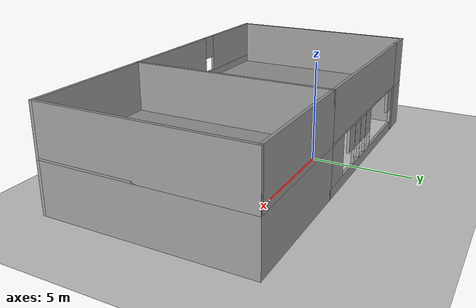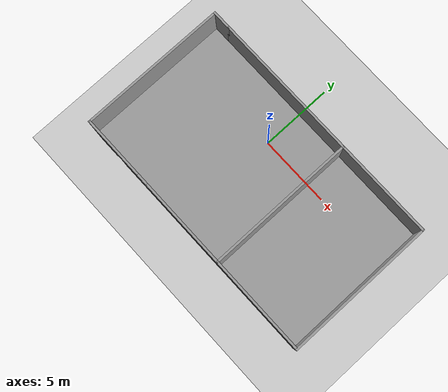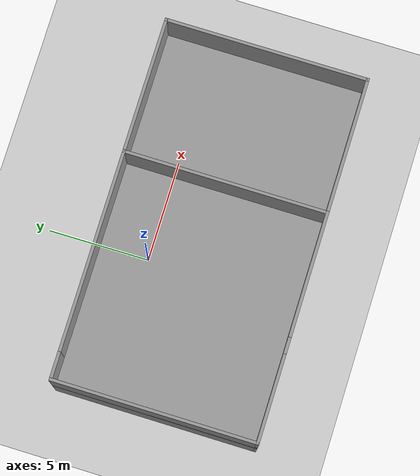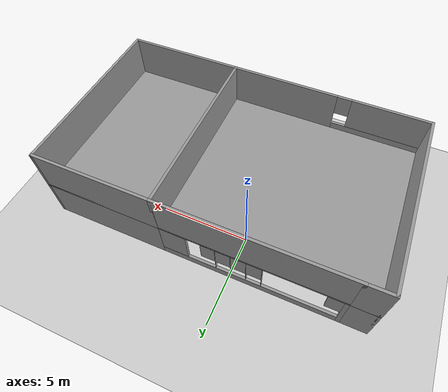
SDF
<sdf version="1.7">
 <world name="default">
  <light name="sun" type="directional">
   <pose>0 0 10 0 -0 0</pose>
   <diffuse>0.8 0.8 0.8 1</diffuse>
   <specular>0.2 0.2 0.2 1</specular>
   <attenuation>
    <range>1000</range>
    <constant>0.9</constant>
    <linear>0.01</linear>
    <quadratic>0.001</quadratic>
   </attenuation>
   <direction>-0.5 0.1 -0.9</direction>
   <spot><inner_angle>0</inner_angle><outer_angle>0</outer_angle><falloff>0</falloff></spot>
  </light>
  <model name="ground_plane">
   <static>1</static>
   <link name="link">
    <collision name="collision">
     <geometry><plane><normal>0 0 1</normal><size>100 100</size></plane></geometry>
     <surface>
      <contact><collide_bitmask>65535</collide_bitmask></contact>
      <friction><ode><mu>100</mu><mu2>50</mu2></ode></friction>
     </surface>
    </collision>
    <visual name="visual">
     <cast_shadows>0</cast_shadows>
     <geometry><plane><normal>0 0 1</normal><size>100 100</size></plane></geometry>
     <material>
      <script><uri>file://media/materials/scripts/gazebo.material</uri><name>Gazebo/Grey</name></script>
     </material>
    </visual>
   </link>
  </model>
  <gravity>0 0 -9.8</gravity>
  <magnetic_field>6e-06 2.3e-05 -4.2e-05</magnetic_field>
  <atmosphere type="adiabatic"/>
  <physics type="ode">
   <max_step_size>0.001</max_step_size>
   <real_time_factor>1</real_time_factor>
   <real_time_update_rate>1000</real_time_update_rate>
  </physics>
  <scene><ambient>0.4 0.4 0.4 1</ambient><background>0.7 0.7 0.7 1</background><shadows>1</shadows></scene>
  <audio><device>default</device></audio>
  <spherical_coordinates>
   <surface_model>EARTH_WGS84</surface_model>
   <latitude_deg>0</latitude_deg>
   <longitude_deg>0</longitude_deg>
   <elevation>0</elevation>
   <heading_deg>0</heading_deg>
  </spherical_coordinates>
  <model name="Heiligenhafen">
   <pose>1.60498 -2.66495 0 0 -0 0</pose>
   <link name="Floor_0">
    <collision name="Floor_0_Collision">
     <geometry><box><size>17.85 10 0.1</size></box></geometry>
     <pose>0 0 0.05 0 -0 0</pose>
    </collision>
    <visual name="Floor_0_Visual">
     <pose>0 0 0.05 0 -0 0</pose>
     <geometry><box><size>17.85 10 0.1</size></box></geometry>
     <material>
      <script><uri>file://media/materials/scripts/gazebo.material</uri><name>Gazebo/Grey</name></script>
      <ambient>1 1 1 1</ambient>
     </material>
     <meta><layer>1</layer></meta>
    </visual>
    <pose>0 0 2.5 0 -0 0</pose>
   </link>
   <link name="Wall_0">
    <pose>-2.675 4.925 0 0 -0 0</pose>
    <visual name="Wall_0_Visual_0">
     <pose>-4.81457 0 1.25 0 -0 0</pose>
     <geometry><box><size>0.370856 0.15 2.5</size></box></geometry>
     <material>
      <script><uri>file://media/materials/scripts/gazebo.material</uri><name>Gazebo/Grey</name></script>
      <ambient>1 1 1 1</ambient>
     </material>
     <meta><layer>0</layer></meta>
    </visual>
    <collision name="Wall_0_Collision_0">
     <geometry><box><size>0.370856 0.15 2.5</size></box></geometry>
     <pose>-4.81457 0 1.25 0 -0 0</pose>
    </collision>
    <visual name="Wall_0_Visual_1">
     <pose>0.185428 0 0.25 0 -0 0</pose>
     <geometry><box><size>9.62914 0.15 0.5</size></box></geometry>
     <material>
      <script><uri>file://media/materials/scripts/gazebo.material</uri><name>Gazebo/Grey</name></script>
      <ambient>1 1 1 1</ambient>
     </material>
     <meta><layer>0</layer></meta>
    </visual>
    <collision name="Wall_0_Collision_1">
     <geometry><box><size>9.62914 0.15 0.5</size></box></geometry>
     <pose>0.185428 0 0.25 0 -0 0</pose>
    </collision>
    <visual name="Wall_0_Visual_2">
     <pose>-0.681036 0 1.5 0 -0 0</pose>
     <geometry><box><size>0.020372 0.15 2</size></box></geometry>
     <material>
      <script><uri>file://media/materials/scripts/gazebo.material</uri><name>Gazebo/Grey</name></script>
      <ambient>1 1 1 1</ambient>
     </material>
     <meta><layer>0</layer></meta>
    </visual>
    <collision name="Wall_0_Collision_2">
     <geometry><box><size>0.020372 0.15 2</size></box></geometry>
     <pose>-0.681036 0 1.5 0 -0 0</pose>
    </collision>
    <visual name="Wall_0_Visual_3">
     <pose>0.139335 0 1.5 0 -0 0</pose>
     <geometry><box><size>0.020372 0.15 2</size></box></geometry>
     <material>
      <script><uri>file://media/materials/scripts/gazebo.material</uri><name>Gazebo/Grey</name></script>
      <ambient>1 1 1 1</ambient>
     </material>
     <meta><layer>0</layer></meta>
    </visual>
    <collision name="Wall_0_Collision_3">
     <geometry><box><size>0.020372 0.15 2</size></box></geometry>
     <pose>0.139335 0 1.5 0 -0 0</pose>
    </collision>
    <visual name="Wall_0_Visual_4">
     <pose>0.959707 0 1.5 0 -0 0</pose>
     <geometry><box><size>0.020372 0.15 2</size></box></geometry>
     <material>
      <script><uri>file://media/materials/scripts/gazebo.material</uri><name>Gazebo/Grey</name></script>
      <ambient>1 1 1 1</ambient>
     </material>
     <meta><layer>0</layer></meta>
    </visual>
    <collision name="Wall_0_Collision_4">
     <geometry><box><size>0.020372 0.15 2</size></box></geometry>
     <pose>0.959707 0 1.5 0 -0 0</pose>
    </collision>
    <visual name="Wall_0_Visual_5">
     <pose>1.78008 0 1.5 0 -0 0</pose>
     <geometry><box><size>0.020372 0.15 2</size></box></geometry>
     <material>
      <script><uri>file://media/materials/scripts/gazebo.material</uri><name>Gazebo/Grey</name></script>
      <ambient>1 1 1 1</ambient>
     </material>
     <meta><layer>0</layer></meta>
    </visual>
    <collision name="Wall_0_Collision_5">
     <geometry><box><size>0.020372 0.15 2</size></box></geometry>
     <pose>1.78008 0 1.5 0 -0 0</pose>
    </collision>
    <visual name="Wall_0_Visual_6">
     <pose>4.18481 0 1.5 0 -0 0</pose>
     <geometry><box><size>1.63038 0.15 2</size></box></geometry>
     <material>
      <script><uri>file://media/materials/scripts/gazebo.material</uri><name>Gazebo/Grey</name></script>
      <ambient>1 1 1 1</ambient>
     </material>
     <meta><layer>0</layer></meta>
    </visual>
    <collision name="Wall_0_Collision_6">
     <geometry><box><size>1.63038 0.15 2</size></box></geometry>
     <pose>4.18481 0 1.5 0 -0 0</pose>
    </collision>
    <visual name="Wall_0_Visual_7">
     <pose>-4.23947 0 1.9 0 -0 0</pose>
     <geometry><box><size>0.779353 0.15 1.2</size></box></geometry>
     <material>
      <script><uri>file://media/materials/scripts/gazebo.material</uri><name>Gazebo/Grey</name></script>
      <ambient>1 1 1 1</ambient>
     </material>
     <meta><layer>0</layer></meta>
    </visual>
    <collision name="Wall_0_Collision_7">
     <geometry><box><size>0.779353 0.15 1.2</size></box></geometry>
     <pose>-4.23947 0 1.9 0 -0 0</pose>
    </collision>
    <visual name="Wall_0_Visual_8">
     <pose>-0.27085 0 1.9 0 -0 0</pose>
     <geometry><box><size>0.8 0.15 1.2</size></box></geometry>
     <material>
      <script><uri>file://media/materials/scripts/gazebo.material</uri><name>Gazebo/Grey</name></script>
      <ambient>1 1 1 1</ambient>
     </material>
     <meta><layer>0</layer></meta>
    </visual>
    <collision name="Wall_0_Collision_8">
     <geometry><box><size>0.8 0.15 1.2</size></box></geometry>
     <pose>-0.27085 0 1.9 0 -0 0</pose>
    </collision>
    <visual name="Wall_0_Visual_9">
     <pose>0.549521 0 1.9 0 -0 0</pose>
     <geometry><box><size>0.8 0.15 1.2</size></box></geometry>
     <material>
      <script><uri>file://media/materials/scripts/gazebo.material</uri><name>Gazebo/Grey</name></script>
      <ambient>1 1 1 1</ambient>
     </material>
     <meta><layer>0</layer></meta>
    </visual>
    <collision name="Wall_0_Collision_9">
     <geometry><box><size>0.8 0.15 1.2</size></box></geometry>
     <pose>0.549521 0 1.9 0 -0 0</pose>
    </collision>
    <visual name="Wall_0_Visual_10">
     <pose>1.36989 0 1.9 0 -0 0</pose>
     <geometry><box><size>0.8 0.15 1.2</size></box></geometry>
     <material>
      <script><uri>file://media/materials/scripts/gazebo.material</uri><name>Gazebo/Grey</name></script>
      <ambient>1 1 1 1</ambient>
     </material>
     <meta><layer>0</layer></meta>
    </visual>
    <collision name="Wall_0_Collision_10">
     <geometry><box><size>0.8 0.15 1.2</size></box></geometry>
     <pose>1.36989 0 1.9 0 -0 0</pose>
    </collision>
    <visual name="Wall_0_Visual_11">
     <pose>2.17994 0 1.9 0 -0 0</pose>
     <geometry><box><size>0.779353 0.15 1.2</size></box></geometry>
     <material>
      <script><uri>file://media/materials/scripts/gazebo.material</uri><name>Gazebo/Grey</name></script>
      <ambient>1 1 1 1</ambient>
     </material>
     <meta><layer>0</layer></meta>
    </visual>
    <collision name="Wall_0_Collision_11">
     <geometry><box><size>0.779353 0.15 1.2</size></box></geometry>
     <pose>2.17994 0 1.9 0 -0 0</pose>
    </collision>
   </link>
   <link name="Wall_10">
    <collision name="Wall_10_Collision">
     <geometry><box><size>6.75 0.15 2.5</size></box></geometry>
     <pose>0 0 1.25 0 -0 0</pose>
    </collision>
    <visual name="Wall_10_Visual">
     <pose>0 0 1.25 0 -0 0</pose>
     <geometry><box><size>6.75 0.15 2.5</size></box></geometry>
     <material>
      <script><uri>file://media/materials/scripts/gazebo.material</uri><name>Gazebo/Grey</name></script>
      <ambient>1 1 1 1</ambient>
     </material>
     <meta><layer>0</layer></meta>
    </visual>
    <pose>5.55 -4.925 0 0 -0 3.14159</pose>
   </link>
   <link name="Wall_12">
    <collision name="Wall_12_Collision">
     <geometry><box><size>10 0.15 2.5</size></box></geometry>
     <pose>0 0 1.25 0 -0 0</pose>
    </collision>
    <visual name="Wall_12_Visual">
     <pose>0 0 1.25 0 -0 0</pose>
     <geometry><box><size>10 0.15 2.5</size></box></geometry>
     <material>
      <script><uri>file://media/materials/scripts/gazebo.material</uri><name>Gazebo/Grey</name></script>
      <ambient>1 1 1 1</ambient>
     </material>
     <meta><layer>1</layer></meta>
    </visual>
    <pose>-2.675 4.925 2.5 0 -0 0</pose>
   </link>
   <link name="Wall_13">
    <collision name="Wall_13_Collision">
     <geometry><box><size>10 0.15 2.5</size></box></geometry>
     <pose>0 0 1.25 0 -0 0</pose>
    </collision>
    <visual name="Wall_13_Visual">
     <pose>0 0 1.25 0 -0 0</pose>
     <geometry><box><size>10 0.15 2.5</size></box></geometry>
     <material>
      <script><uri>file://media/materials/scripts/gazebo.material</uri><name>Gazebo/Grey</name></script>
      <ambient>1 1 1 1</ambient>
     </material>
     <meta><layer>1</layer></meta>
    </visual>
    <pose>2.25 0 2.5 0 -0 -1.5708</pose>
   </link>
   <link name="Wall_14">
    <pose>-3.3 -4.925 2.5 0 -0 3.14159</pose>
    <visual name="Wall_14_Visual_0">
     <pose>-2.56404 0 1.25 0 -0 0</pose>
     <geometry><box><size>6.12192 0.15 2.5</size></box></geometry>
     <material>
      <script><uri>file://media/materials/scripts/gazebo.material</uri><name>Gazebo/Grey</name></script>
      <ambient>1 1 1 1</ambient>
     </material>
     <meta><layer>1</layer></meta>
    </visual>
    <collision name="Wall_14_Collision_0">
     <geometry><box><size>6.12192 0.15 2.5</size></box></geometry>
     <pose>-2.56404 0 1.25 0 -0 0</pose>
    </collision>
    <visual name="Wall_14_Visual_1">
     <pose>3.06096 0 0.25 0 -0 0</pose>
     <geometry><box><size>5.12808 0.15 0.5</size></box></geometry>
     <material>
      <script><uri>file://media/materials/scripts/gazebo.material</uri><name>Gazebo/Grey</name></script>
      <ambient>1 1 1 1</ambient>
     </material>
     <meta><layer>1</layer></meta>
    </visual>
    <collision name="Wall_14_Collision_1">
     <geometry><box><size>5.12808 0.15 0.5</size></box></geometry>
     <pose>3.06096 0 0.25 0 -0 0</pose>
    </collision>
    <visual name="Wall_14_Visual_2">
     <pose>3.46096 0 1.5 0 -0 0</pose>
     <geometry><box><size>4.32808 0.15 2</size></box></geometry>
     <material>
      <script><uri>file://media/materials/scripts/gazebo.material</uri><name>Gazebo/Grey</name></script>
      <ambient>1 1 1 1</ambient>
     </material>
     <meta><layer>1</layer></meta>
    </visual>
    <collision name="Wall_14_Collision_2">
     <geometry><box><size>4.32808 0.15 2</size></box></geometry>
     <pose>3.46096 0 1.5 0 -0 0</pose>
    </collision>
    <visual name="Wall_14_Visual_3">
     <pose>0.896917 0 1.9 0 -0 0</pose>
     <geometry><box><size>0.8 0.15 1.2</size></box></geometry>
     <material>
      <script><uri>file://media/materials/scripts/gazebo.material</uri><name>Gazebo/Grey</name></script>
      <ambient>1 1 1 1</ambient>
     </material>
     <meta><layer>1</layer></meta>
    </visual>
    <collision name="Wall_14_Collision_3">
     <geometry><box><size>0.8 0.15 1.2</size></box></geometry>
     <pose>0.896917 0 1.9 0 -0 0</pose>
    </collision>
   </link>
   <link name="Wall_15">
    <collision name="Wall_15_Collision">
     <geometry><box><size>10 0.15 2.5</size></box></geometry>
     <pose>0 0 1.25 0 -0 0</pose>
    </collision>
    <visual name="Wall_15_Visual">
     <pose>0 0 1.25 0 -0 0</pose>
     <geometry><box><size>10 0.15 2.5</size></box></geometry>
     <material>
      <script><uri>file://media/materials/scripts/gazebo.material</uri><name>Gazebo/Grey</name></script>
      <ambient>1 1 1 1</ambient>
     </material>
     <meta><layer>1</layer></meta>
    </visual>
    <pose>-8.85 0 2.5 0 -0 1.5708</pose>
   </link>
   <link name="Wall_16">
    <collision name="Wall_16_Collision">
     <geometry><box><size>1.4 0.15 2.5</size></box></geometry>
     <pose>0 0 1.25 0 -0 0</pose>
    </collision>
    <visual name="Wall_16_Visual">
     <pose>0 0 1.25 0 -0 0</pose>
     <geometry><box><size>1.4 0.15 2.5</size></box></geometry>
     <material>
      <script><uri>file://media/materials/scripts/gazebo.material</uri><name>Gazebo/Grey</name></script>
      <ambient>1 1 1 1</ambient>
     </material>
     <meta><layer>1</layer></meta>
    </visual>
    <pose>-8.225 4.925 2.5 0 -0 0</pose>
   </link>
   <link name="Wall_17">
    <collision name="Wall_17_Collision">
     <geometry><box><size>6.75 0.15 2.5</size></box></geometry>
     <pose>0 0 1.25 0 -0 0</pose>
    </collision>
    <visual name="Wall_17_Visual">
     <pose>0 0 1.25 0 -0 0</pose>
     <geometry><box><size>6.75 0.15 2.5</size></box></geometry>
     <material>
      <script><uri>file://media/materials/scripts/gazebo.material</uri><name>Gazebo/Grey</name></script>
      <ambient>1 1 1 1</ambient>
     </material>
     <meta><layer>1</layer></meta>
    </visual>
    <pose>5.55 4.925 2.5 0 -0 0</pose>
   </link>
   <link name="Wall_18">
    <collision name="Wall_18_Collision">
     <geometry><box><size>10 0.15 2.5</size></box></geometry>
     <pose>0 0 1.25 0 -0 0</pose>
    </collision>
    <visual name="Wall_18_Visual">
     <pose>0 0 1.25 0 -0 0</pose>
     <geometry><box><size>10 0.15 2.5</size></box></geometry>
     <material>
      <script><uri>file://media/materials/scripts/gazebo.material</uri><name>Gazebo/Grey</name></script>
      <ambient>1 1 1 1</ambient>
     </material>
     <meta><layer>1</layer></meta>
    </visual>
    <pose>8.85 0 2.5 0 -0 -1.5708</pose>
   </link>
   <link name="Wall_19">
    <collision name="Wall_19_Collision">
     <geometry><box><size>6.75 0.15 2.5</size></box></geometry>
     <pose>0 0 1.25 0 -0 0</pose>
    </collision>
    <visual name="Wall_19_Visual">
     <pose>0 0 1.25 0 -0 0</pose>
     <geometry><box><size>6.75 0.15 2.5</size></box></geometry>
     <material>
      <script><uri>file://media/materials/scripts/gazebo.material</uri><name>Gazebo/Grey</name></script>
      <ambient>1 1 1 1</ambient>
     </material>
     <meta><layer>1</layer></meta>
    </visual>
    <pose>5.55 -4.925 2.5 0 -0 3.14159</pose>
   </link>
   <link name="Wall_3">
    <pose>2.25 0 0 0 -0 -1.5708</pose>
    <visual name="Wall_3_Visual_0">
     <pose>-4.70955 0 1.25 0 -0 0</pose>
     <geometry><box><size>0.580898 0.15 2.5</size></box></geometry>
     <material>
      <script><uri>file://media/materials/scripts/gazebo.material</uri><name>Gazebo/Grey</name></script>
      <ambient>1 1 1 1</ambient>
     </material>
     <meta><layer>0</layer></meta>
    </visual>
    <collision name="Wall_3_Collision_0">
     <geometry><box><size>0.580898 0.15 2.5</size></box></geometry>
     <pose>-4.70955 0 1.25 0 -0 0</pose>
    </collision>
    <visual name="Wall_3_Visual_1">
     <pose>-0.492777 0 1.25 0 -0 0</pose>
     <geometry><box><size>6.05265 0.15 2.5</size></box></geometry>
     <material>
      <script><uri>file://media/materials/scripts/gazebo.material</uri><name>Gazebo/Grey</name></script>
      <ambient>1 1 1 1</ambient>
     </material>
     <meta><layer>0</layer></meta>
    </visual>
    <collision name="Wall_3_Collision_1">
     <geometry><box><size>6.05265 0.15 2.5</size></box></geometry>
     <pose>-0.492777 0 1.25 0 -0 0</pose>
    </collision>
    <visual name="Wall_3_Visual_2">
     <pose>4.21677 0 1.25 0 -0 0</pose>
     <geometry><box><size>1.56645 0.15 2.5</size></box></geometry>
     <material>
      <script><uri>file://media/materials/scripts/gazebo.material</uri><name>Gazebo/Grey</name></script>
      <ambient>1 1 1 1</ambient>
     </material>
     <meta><layer>0</layer></meta>
    </visual>
    <collision name="Wall_3_Collision_2">
     <geometry><box><size>1.56645 0.15 2.5</size></box></geometry>
     <pose>4.21677 0 1.25 0 -0 0</pose>
    </collision>
    <visual name="Wall_3_Visual_3">
     <pose>-3.9691 0 2.25 0 -0 0</pose>
     <geometry><box><size>0.9 0.15 0.5</size></box></geometry>
     <material>
      <script><uri>file://media/materials/scripts/gazebo.material</uri><name>Gazebo/Grey</name></script>
      <ambient>1 1 1 1</ambient>
     </material>
     <meta><layer>0</layer></meta>
    </visual>
    <collision name="Wall_3_Collision_3">
     <geometry><box><size>0.9 0.15 0.5</size></box></geometry>
     <pose>-3.9691 0 2.25 0 -0 0</pose>
    </collision>
    <visual name="Wall_3_Visual_4">
     <pose>2.98355 0 2.25 0 -0 0</pose>
     <geometry><box><size>0.9 0.15 0.5</size></box></geometry>
     <material>
      <script><uri>file://media/materials/scripts/gazebo.material</uri><name>Gazebo/Grey</name></script>
      <ambient>1 1 1 1</ambient>
     </material>
     <meta><layer>0</layer></meta>
    </visual>
    <collision name="Wall_3_Collision_4">
     <geometry><box><size>0.9 0.15 0.5</size></box></geometry>
     <pose>2.98355 0 2.25 0 -0 0</pose>
    </collision>
   </link>
   <link name="Wall_4">
    <pose>-3.3 -4.925 0 0 -0 3.14159</pose>
    <visual name="Wall_4_Visual_0">
     <pose>-1.16365 0 1.25 0 -0 0</pose>
     <geometry><box><size>8.92271 0.15 2.5</size></box></geometry>
     <material>
      <script><uri>file://media/materials/scripts/gazebo.material</uri><name>Gazebo/Grey</name></script>
      <ambient>1 1 1 1</ambient>
     </material>
     <meta><layer>0</layer></meta>
    </visual>
    <collision name="Wall_4_Collision_0">
     <geometry><box><size>8.92271 0.15 2.5</size></box></geometry>
     <pose>-1.16365 0 1.25 0 -0 0</pose>
    </collision>
    <visual name="Wall_4_Visual_1">
     <pose>4.91135 0 1.25 0 -0 0</pose>
     <geometry><box><size>1.42729 0.15 2.5</size></box></geometry>
     <material>
      <script><uri>file://media/materials/scripts/gazebo.material</uri><name>Gazebo/Grey</name></script>
      <ambient>1 1 1 1</ambient>
     </material>
     <meta><layer>0</layer></meta>
    </visual>
    <collision name="Wall_4_Collision_1">
     <geometry><box><size>1.42729 0.15 2.5</size></box></geometry>
     <pose>4.91135 0 1.25 0 -0 0</pose>
    </collision>
    <visual name="Wall_4_Visual_2">
     <pose>3.74771 0 2.25 0 -0 0</pose>
     <geometry><box><size>0.9 0.15 0.5</size></box></geometry>
     <material>
      <script><uri>file://media/materials/scripts/gazebo.material</uri><name>Gazebo/Grey</name></script>
      <ambient>1 1 1 1</ambient>
     </material>
     <meta><layer>0</layer></meta>
    </visual>
    <collision name="Wall_4_Collision_2">
     <geometry><box><size>0.9 0.15 0.5</size></box></geometry>
     <pose>3.74771 0 2.25 0 -0 0</pose>
    </collision>
   </link>
   <link name="Wall_5">
    <collision name="Wall_5_Collision">
     <geometry><box><size>10 0.15 2.5</size></box></geometry>
     <pose>0 0 1.25 0 -0 0</pose>
    </collision>
    <visual name="Wall_5_Visual">
     <pose>0 0 1.25 0 -0 0</pose>
     <geometry><box><size>10 0.15 2.5</size></box></geometry>
     <material>
      <script><uri>file://media/materials/scripts/gazebo.material</uri><name>Gazebo/Grey</name></script>
      <ambient>1 1 1 1</ambient>
     </material>
     <meta><layer>0</layer></meta>
    </visual>
    <pose>-8.85 0 0 0 -0 1.5708</pose>
   </link>
   <link name="Wall_6">
    <collision name="Wall_6_Collision">
     <geometry><box><size>1.4 0.15 2.5</size></box></geometry>
     <pose>0 0 1.25 0 -0 0</pose>
    </collision>
    <visual name="Wall_6_Visual">
     <pose>0 0 1.25 0 -0 0</pose>
     <geometry><box><size>1.4 0.15 2.5</size></box></geometry>
     <material>
      <script><uri>file://media/materials/scripts/gazebo.material</uri><name>Gazebo/Grey</name></script>
      <ambient>1 1 1 1</ambient>
     </material>
     <meta><layer>0</layer></meta>
    </visual>
    <pose>-8.225 4.925 0 0 -0 0</pose>
   </link>
   <link name="Wall_8">
    <collision name="Wall_8_Collision">
     <geometry><box><size>6.75 0.15 2.5</size></box></geometry>
     <pose>0 0 1.25 0 -0 0</pose>
    </collision>
    <visual name="Wall_8_Visual">
     <pose>0 0 1.25 0 -0 0</pose>
     <geometry><box><size>6.75 0.15 2.5</size></box></geometry>
     <material>
      <script><uri>file://media/materials/scripts/gazebo.material</uri><name>Gazebo/Grey</name></script>
      <ambient>1 1 1 1</ambient>
     </material>
     <meta><layer>0</layer></meta>
    </visual>
    <pose>5.55 4.925 0 0 -0 0</pose>
   </link>
   <link name="Wall_9">
    <collision name="Wall_9_Collision">
     <geometry><box><size>10 0.15 2.5</size></box></geometry>
     <pose>0 0 1.25 0 -0 0</pose>
    </collision>
    <visual name="Wall_9_Visual">
     <pose>0 0 1.25 0 -0 0</pose>
     <geometry><box><size>10 0.15 2.5</size></box></geometry>
     <material>
      <script><uri>file://media/materials/scripts/gazebo.material</uri><name>Gazebo/Grey</name></script>
      <ambient>1 1 1 1</ambient>
     </material>
     <meta><layer>0</layer></meta>
    </visual>
    <pose>8.85 0 0 0 -0 -1.5708</pose>
   </link>
   <static>1</static>
  </model>
 </world>
</sdf>
